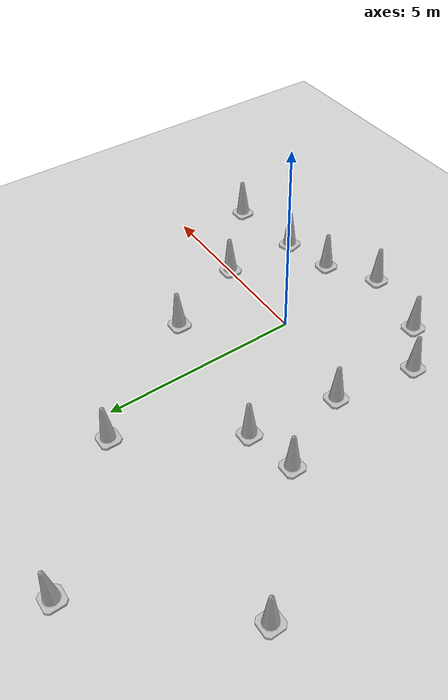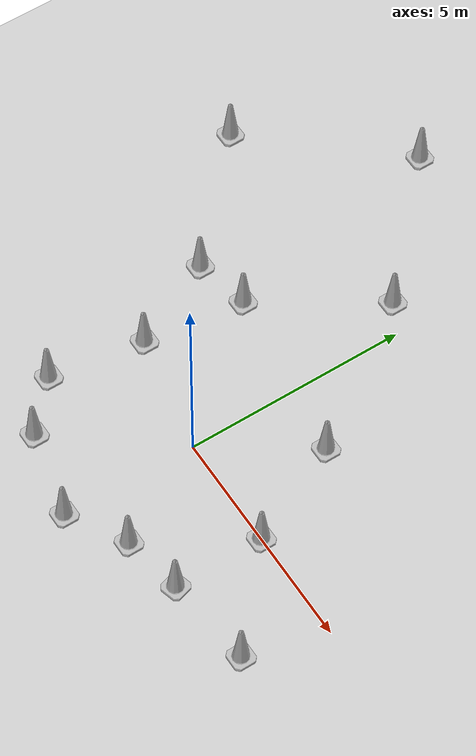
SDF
<sdf version="1.7">
 <world name="default">
  <light name="sun" type="directional">
   <pose>0 0 10 0 -0 0</pose>
   <diffuse>0.8 0.8 0.8 1</diffuse>
   <specular>0.2 0.2 0.2 1</specular>
   <attenuation>
    <range>1000</range>
    <constant>0.9</constant>
    <linear>0.01</linear>
    <quadratic>0.001</quadratic>
   </attenuation>
   <direction>-0.5 0.1 -0.9</direction>
   <spot><inner_angle>0</inner_angle><outer_angle>0</outer_angle><falloff>0</falloff></spot>
  </light>
  <model name="ground_plane">
   <static>1</static>
   <link name="link">
    <collision name="collision">
     <geometry><plane><normal>0 0 1</normal><size>100 100</size></plane></geometry>
     <surface>
      <contact><collide_bitmask>65535</collide_bitmask></contact>
      <friction><ode><mu>100</mu><mu2>50</mu2></ode></friction>
     </surface>
    </collision>
    <visual name="visual">
     <cast_shadows>0</cast_shadows>
     <geometry><plane><normal>0 0 1</normal><size>100 100</size></plane></geometry>
     <material>
      <script><uri>file://media/materials/scripts/gazebo.material</uri><name>Gazebo/Grey</name></script>
     </material>
    </visual>
   </link>
  </model>
  <gravity>0 0 -9.8</gravity>
  <magnetic_field>6e-06 2.3e-05 -4.2e-05</magnetic_field>
  <atmosphere type="adiabatic"/>
  <physics type="ode">
   <max_step_size>0.001</max_step_size>
   <real_time_factor>1</real_time_factor>
   <real_time_update_rate>1000</real_time_update_rate>
  </physics>
  <scene><ambient>0.4 0.4 0.4 1</ambient><background>0.7 0.7 0.7 1</background><shadows>1</shadows></scene>
  <audio><device>default</device></audio>
  <spherical_coordinates>
   <surface_model>EARTH_WGS84</surface_model>
   <latitude_deg>0</latitude_deg>
   <longitude_deg>0</longitude_deg>
   <elevation>0</elevation>
   <heading_deg>0</heading_deg>
  </spherical_coordinates>
  <model name="Construction Cone">
   <link name="link">
    <collision name="collision">
     <geometry>
      <mesh><scale>10 10 10</scale><uri>model://construction_cone/meshes/construction_cone.dae</uri></mesh>
     </geometry>
    </collision>
    <visual name="visual">
     <geometry>
      <mesh><scale>10 10 10</scale><uri>model://construction_cone/meshes/construction_cone.dae</uri></mesh>
     </geometry>
    </visual>
    <inertial>
     <inertia><ixx>1</ixx><ixy>0</ixy><ixz>0</ixz><iyy>1</iyy><iyz>0</iyz><izz>1</izz></inertia>
     <mass>1</mass>
    </inertial>
   </link>
   <pose>-2.66756 0.516256 -0 0 -0 0</pose>
  </model>
  <model name="Construction Cone_clone">
   <link name="link">
    <collision name="collision">
     <geometry>
      <mesh><scale>10 10 10</scale><uri>model://construction_cone/meshes/construction_cone.dae</uri></mesh>
     </geometry>
    </collision>
    <visual name="visual">
     <geometry>
      <mesh><scale>10 10 10</scale><uri>model://construction_cone/meshes/construction_cone.dae</uri></mesh>
     </geometry>
    </visual>
    <inertial>
     <inertia><ixx>1</ixx><ixy>0</ixy><ixz>0</ixz><iyy>1</iyy><iyz>0</iyz><izz>1</izz></inertia>
     <mass>1</mass>
    </inertial>
   </link>
   <pose>-2.37049 2.75619 -0 0 -1e-06 0</pose>
  </model>
  <model name="Construction Cone_clone_0">
   <link name="link">
    <collision name="collision">
     <geometry>
      <mesh><scale>10 10 10</scale><uri>model://construction_cone/meshes/construction_cone.dae</uri></mesh>
     </geometry>
    </collision>
    <visual name="visual">
     <geometry>
      <mesh><scale>10 10 10</scale><uri>model://construction_cone/meshes/construction_cone.dae</uri></mesh>
     </geometry>
    </visual>
    <inertial>
     <inertia><ixx>1</ixx><ixy>0</ixy><ixz>0</ixz><iyy>1</iyy><iyz>0</iyz><izz>1</izz></inertia>
     <mass>1</mass>
    </inertial>
   </link>
   <pose>2.533 -0.001219 -0 0 -0 0</pose>
  </model>
  <model name="Construction Cone_clone_1">
   <link name="link">
    <collision name="collision">
     <geometry>
      <mesh><scale>10 10 10</scale><uri>model://construction_cone/meshes/construction_cone.dae</uri></mesh>
     </geometry>
    </collision>
    <visual name="visual">
     <geometry>
      <mesh><scale>10 10 10</scale><uri>model://construction_cone/meshes/construction_cone.dae</uri></mesh>
     </geometry>
    </visual>
    <inertial>
     <inertia><ixx>1</ixx><ixy>0</ixy><ixz>0</ixz><iyy>1</iyy><iyz>0</iyz><izz>1</izz></inertia>
     <mass>1</mass>
    </inertial>
   </link>
   <pose>1.1785 -2.25694 -0 0 -1e-06 0</pose>
  </model>
  <model name="Construction Cone_clone_2">
   <link name="link">
    <collision name="collision">
     <geometry>
      <mesh><scale>10 10 10</scale><uri>model://construction_cone/meshes/construction_cone.dae</uri></mesh>
     </geometry>
    </collision>
    <visual name="visual">
     <geometry>
      <mesh><scale>10 10 10</scale><uri>model://construction_cone/meshes/construction_cone.dae</uri></mesh>
     </geometry>
    </visual>
    <inertial>
     <inertia><ixx>1</ixx><ixy>0</ixy><ixz>0</ixz><iyy>1</iyy><iyz>0</iyz><izz>1</izz></inertia>
     <mass>1</mass>
    </inertial>
   </link>
   <pose>-3.4126 7.96107 -9e-06 -0 -0 -0</pose>
  </model>
  <model name="Construction Cone_clone_3">
   <link name="link">
    <collision name="collision">
     <geometry>
      <mesh><scale>10 10 10</scale><uri>model://construction_cone/meshes/construction_cone.dae</uri></mesh>
     </geometry>
    </collision>
    <visual name="visual">
     <geometry>
      <mesh><scale>10 10 10</scale><uri>model://construction_cone/meshes/construction_cone.dae</uri></mesh>
     </geometry>
    </visual>
    <inertial>
     <inertia><ixx>1</ixx><ixy>0</ixy><ixz>0</ixz><iyy>1</iyy><iyz>0</iyz><izz>1</izz></inertia>
     <mass>1</mass>
    </inertial>
   </link>
   <pose>1.51524 2.22986 -0 0 -0 0</pose>
  </model>
  <model name="Construction Cone_clone_4">
   <link name="link">
    <collision name="collision">
     <geometry>
      <mesh><scale>10 10 10</scale><uri>model://construction_cone/meshes/construction_cone.dae</uri></mesh>
     </geometry>
    </collision>
    <visual name="visual">
     <geometry>
      <mesh><scale>10 10 10</scale><uri>model://construction_cone/meshes/construction_cone.dae</uri></mesh>
     </geometry>
    </visual>
    <inertial>
     <inertia><ixx>1</ixx><ixy>0</ixy><ixz>0</ixz><iyy>1</iyy><iyz>0</iyz><izz>1</izz></inertia>
     <mass>1</mass>
    </inertial>
   </link>
   <pose>2.51733 -2.00555 -0 0 -1e-06 0.275977</pose>
  </model>
  <model name="Construction Cone_clone_5">
   <link name="link">
    <collision name="collision">
     <geometry>
      <mesh><scale>10 10 10</scale><uri>model://construction_cone/meshes/construction_cone.dae</uri></mesh>
     </geometry>
    </collision>
    <visual name="visual">
     <geometry>
      <mesh><scale>10 10 10</scale><uri>model://construction_cone/meshes/construction_cone.dae</uri></mesh>
     </geometry>
    </visual>
    <inertial>
     <inertia><ixx>1</ixx><ixy>0</ixy><ixz>0</ixz><iyy>1</iyy><iyz>0</iyz><izz>1</izz></inertia>
     <mass>1</mass>
    </inertial>
   </link>
   <pose>-3 -1.5941 -0 0 -0 0</pose>
  </model>
  <model name="Construction Cone_clone_6">
   <link name="link">
    <collision name="collision">
     <geometry>
      <mesh><scale>10 10 10</scale><uri>model://construction_cone/meshes/construction_cone.dae</uri></mesh>
     </geometry>
    </collision>
    <visual name="visual">
     <geometry>
      <mesh><scale>10 10 10</scale><uri>model://construction_cone/meshes/construction_cone.dae</uri></mesh>
     </geometry>
    </visual>
    <inertial>
     <inertia><ixx>1</ixx><ixy>0</ixy><ixz>0</ixz><iyy>1</iyy><iyz>0</iyz><izz>1</izz></inertia>
     <mass>1</mass>
    </inertial>
   </link>
   <pose>-1.98275 -2.54535 -1e-05 0 -0 0</pose>
  </model>
  <model name="Construction Cone_clone_7">
   <link name="link">
    <collision name="collision">
     <geometry>
      <mesh><scale>10 10 10</scale><uri>model://construction_cone/meshes/construction_cone.dae</uri></mesh>
     </geometry>
    </collision>
    <visual name="visual">
     <geometry>
      <mesh><scale>10 10 10</scale><uri>model://construction_cone/meshes/construction_cone.dae</uri></mesh>
     </geometry>
    </visual>
    <inertial>
     <inertia><ixx>1</ixx><ixy>0</ixy><ixz>0</ixz><iyy>1</iyy><iyz>0</iyz><izz>1</izz></inertia>
     <mass>1</mass>
    </inertial>
   </link>
   <pose>-0.073672 -2.99966 -0 0 -1e-06 0</pose>
  </model>
  <model name="Construction Cone_clone_8">
   <link name="link">
    <collision name="collision">
     <geometry>
      <mesh><scale>10 10 10</scale><uri>model://construction_cone/meshes/construction_cone.dae</uri></mesh>
     </geometry>
    </collision>
    <visual name="visual">
     <geometry>
      <mesh><scale>10 10 10</scale><uri>model://construction_cone/meshes/construction_cone.dae</uri></mesh>
     </geometry>
    </visual>
    <inertial>
     <inertia><ixx>1</ixx><ixy>0</ixy><ixz>0</ixz><iyy>1</iyy><iyz>0</iyz><izz>1</izz></inertia>
     <mass>1</mass>
    </inertial>
   </link>
   <pose>4.50375 -1.76219 -1e-06 2e-06 2e-06 0</pose>
  </model>
  <model name="Construction Cone_clone_9">
   <link name="link">
    <collision name="collision">
     <geometry>
      <mesh><scale>10 10 10</scale><uri>model://construction_cone/meshes/construction_cone.dae</uri></mesh>
     </geometry>
    </collision>
    <visual name="visual">
     <geometry>
      <mesh><scale>10 10 10</scale><uri>model://construction_cone/meshes/construction_cone.dae</uri></mesh>
     </geometry>
    </visual>
    <inertial>
     <inertia><ixx>1</ixx><ixy>0</ixy><ixz>0</ixz><iyy>1</iyy><iyz>0</iyz><izz>1</izz></inertia>
     <mass>1</mass>
    </inertial>
   </link>
   <pose>-6.14029 4.88128 -1e-05 0 -0 0</pose>
  </model>
  <model name="Construction Cone_clone_10">
   <link name="link">
    <collision name="collision">
     <geometry>
      <mesh><scale>10 10 10</scale><uri>model://construction_cone/meshes/construction_cone.dae</uri></mesh>
     </geometry>
    </collision>
    <visual name="visual">
     <geometry>
      <mesh><scale>10 10 10</scale><uri>model://construction_cone/meshes/construction_cone.dae</uri></mesh>
     </geometry>
    </visual>
    <inertial>
     <inertia><ixx>1</ixx><ixy>0</ixy><ixz>0</ixz><iyy>1</iyy><iyz>0</iyz><izz>1</izz></inertia>
     <mass>1</mass>
    </inertial>
   </link>
   <pose>-3.6124 2.49269 -0 0 -0 0</pose>
  </model>
  <model name="Construction Cone_clone_11">
   <link name="link">
    <collision name="collision">
     <geometry>
      <mesh><scale>10 10 10</scale><uri>model://construction_cone/meshes/construction_cone.dae</uri></mesh>
     </geometry>
    </collision>
    <visual name="visual">
     <geometry>
      <mesh><scale>10 10 10</scale><uri>model://construction_cone/meshes/construction_cone.dae</uri></mesh>
     </geometry>
    </visual>
    <inertial>
     <inertia><ixx>1</ixx><ixy>0</ixy><ixz>0</ixz><iyy>1</iyy><iyz>0</iyz><izz>1</izz></inertia>
     <mass>1</mass>
    </inertial>
   </link>
   <pose>-0.667798 5.36864 -0 0 -0 0</pose>
  </model>
 </world>
</sdf>
